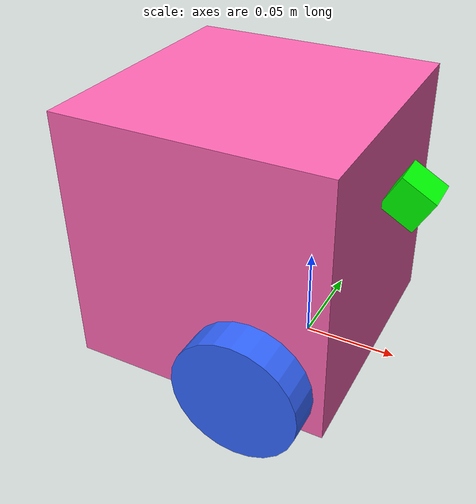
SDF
<?xml version="1.0" ?>
<sdf version="1.6">
  <model name="burger_minimal_camera">

    <!-- ================= base_footprint ================= -->
    <link name="base_footprint"/>

    <!-- ================= base_link ================= -->
    <link name="base_link">
      <pose>-0.032 0 0.070 0 0 0</pose>

      <inertial>
        <mass>0.825735</mass>
        <inertia>
          <ixx>0.72397393</ixx>
          <iyy>0.72397393</iyy>
          <izz>0.653050163</izz>
        </inertia>
      </inertial>

      <collision name="base_collision">
        <geometry>
          <box><size>0.140 0.140 0.140</size></box>
        </geometry>
      </collision>

      <visual name="base_visual">
        <geometry>
          <box><size>0.140 0.140 0.140</size></box>
        </geometry>
        <material>
          <ambient>1.0 0.4 0.7 1</ambient>
          <diffuse>1.0 0.4 0.7 1</diffuse>
        </material>
      </visual>
    </link>

    <!-- ================= LEFT WHEEL ================= -->
    <link name="wheel_left_link">
      <pose>0 0.08 0.023 0 0 0</pose>

      <inertial>
        <mass>0.0285</mass>
        <inertia>
          <ixx>0.0018</ixx>
          <iyy>0.00329</iyy>
          <izz>0.0018</izz>
        </inertia>
      </inertial>

      <collision name="wheel_left_collision">
        <pose>0 0 0 1.5708 0 0</pose>
        <geometry>
          <cylinder>
            <radius>0.033</radius>
            <length>0.018</length>
          </cylinder>
        </geometry>

        <surface>
          <friction>
            <ode>
              <mu>1.2</mu>
              <mu2>0.05</mu2>
              <fdir1>1 0 0</fdir1>
            </ode>
          </friction>
        </surface>
      </collision>

      <visual name="wheel_left_visual">
        <pose>0 0 0 1.5708 0 0</pose>
        <geometry>
          <cylinder>
            <radius>0.033</radius>
            <length>0.018</length>
          </cylinder>
        </geometry>
        <material>
          <ambient>0.2 0.4 1.0 1</ambient>
          <diffuse>0.2 0.4 1.0 1</diffuse>
        </material>
      </visual>
    </link>

    <!-- ================= RIGHT WHEEL ================= -->
    <link name="wheel_right_link">
      <pose>0 -0.08 0.023 0 0 0</pose>

      <inertial>
        <mass>0.0285</mass>
        <inertia>
          <ixx>0.0018</ixx>
          <iyy>0.00329</iyy>
          <izz>0.0018</izz>
        </inertia>
      </inertial>

      <collision name="wheel_right_collision">
        <pose>0 0 0 1.5708 0 0</pose>
        <geometry>
          <cylinder>
            <radius>0.033</radius>
            <length>0.018</length>
          </cylinder>
        </geometry>

        <surface>
          <friction>
            <ode>
              <mu>1.2</mu>
              <mu2>0.05</mu2>
              <fdir1>1 0 0</fdir1>
            </ode>
          </friction>
        </surface>
      </collision>

      <visual name="wheel_right_visual">
        <pose>0 0 0 1.5708 0 0</pose>
        <geometry>
          <cylinder>
            <radius>0.033</radius>
            <length>0.018</length>
          </cylinder>
        </geometry>
        <material>
          <ambient>0.2 0.4 1.0 1</ambient>
          <diffuse>0.2 0.4 1.0 1</diffuse>
        </material>
      </visual>
    </link>

    <!-- ================= CASTER ================= -->
    <link name="caster_back_link">
      <pose>-0.081 0 -0.004 0 0 0</pose>
      <collision name="collision">
        <geometry>
          <sphere><radius>0.005</radius></sphere>
        </geometry>
        <!-- ✅ 캐스터가 방향 강제하지 않게 마찰을 낮춤 -->
        <surface>
          <friction>
            <ode>
              <mu>0.01</mu>
              <mu2>0.01</mu2>
            </ode>
          </friction>
        </surface>
      </collision>
    </link>

    <!-- ================= CAMERA ================= -->
    <link name="camera_link">
      <pose>0.05 0 0.10 0 0.52 0</pose>

      <visual name="visual">
        <geometry><box><size>0.02 0.02 0.02</size></box></geometry>
        <material><ambient>0 1 0 1</ambient></material>
      </visual>

      <sensor name="camera_sensor" type="camera">
        <always_on>true</always_on>
        <update_rate>30</update_rate>
        <visualize>false</visualize>

        <camera>
          <horizontal_fov>1.3962634</horizontal_fov>
          <image>
            <width>640</width>
            <height>480</height>
            <format>R8G8B8</format>
          </image>
          <clip>
            <near>0.05</near>
            <far>10.0</far>
          </clip>
        </camera>

        <plugin name="camera_controller" filename="libgazebo_ros_camera.so">
          <camera_name>camera</camera_name>
          <frame_name>camera_link</frame_name>
        </plugin>
      </sensor>
    </link>

    <!-- ================= JOINTS ================= -->
    <joint name="base_joint" type="fixed">
      <parent>base_footprint</parent>
      <child>base_link</child>
    </joint>

    <joint name="wheel_left_joint" type="revolute">
      <parent>base_link</parent>
      <child>wheel_left_link</child>
      <axis>
        <xyz>0 1 0</xyz>
      </axis>
    </joint>

    <joint name="wheel_right_joint" type="revolute">
      <parent>base_link</parent>
      <child>wheel_right_link</child>
      <axis>
        <xyz>0 1 0</xyz>
      </axis>
    </joint>

    <joint name="caster_back_joint" type="ball">
      <parent>base_link</parent>
      <child>caster_back_link</child>
    </joint>

    <joint name="camera_joint" type="fixed">
      <parent>base_link</parent>
      <child>camera_link</child>
    </joint>

    <!-- ================= DIFF DRIVE ================= -->
    <plugin name="diff_drive" filename="libgazebo_ros_diff_drive.so">
      <left_joint>wheel_left_joint</left_joint>
      <right_joint>wheel_right_joint</right_joint>
      <wheel_separation>0.160</wheel_separation>
      <wheel_diameter>0.066</wheel_diameter>
      <command_topic>cmd_vel</command_topic>
      <robot_base_frame>base_footprint</robot_base_frame>
      <odometry_frame>odom</odometry_frame>
      <update_rate>30</update_rate>
    </plugin>

  </model>
</sdf>
